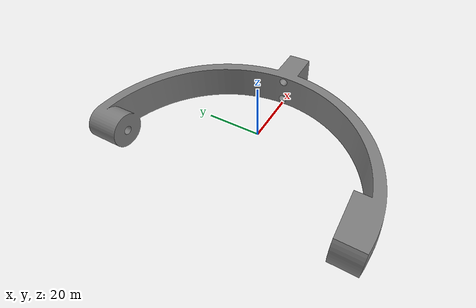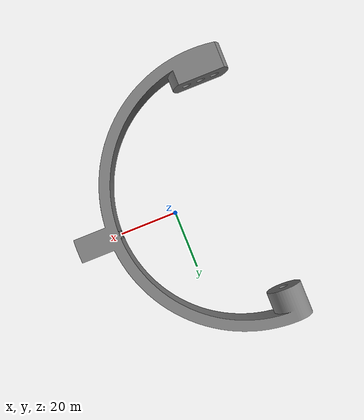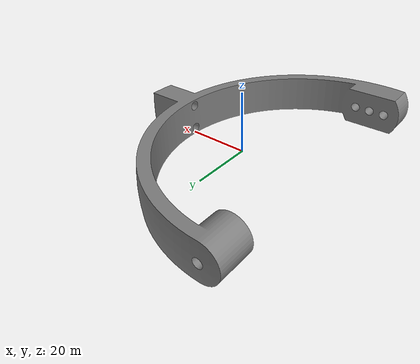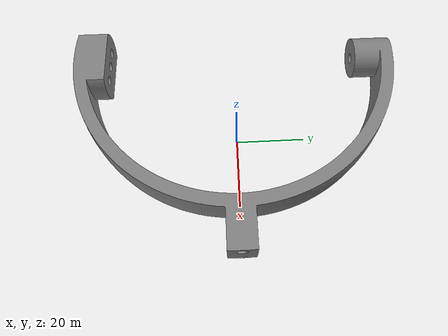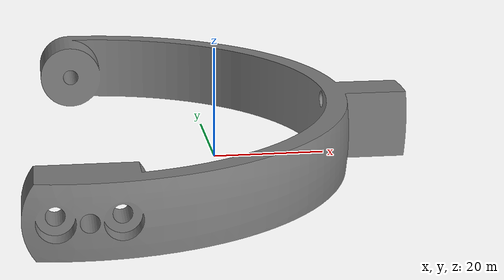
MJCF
<mujoco model="FabConvert.com_back_ring_holder">
  <default>
    <default class="visual">
      <geom group="2" type="mesh" contype="0" conaffinity="0"/>
    </default>
    <default class="collision">
      <geom group="3" type="mesh"/>
    </default>
  </default>
  <asset>
    <mesh file="FabConvert.com_back_ring_holder.obj"/>
  </asset>
  <worldbody>
    <body name="FabConvert.com_back_ring_holder">
      <geom mesh="FabConvert.com_back_ring_holder" class="visual"/>
      <geom mesh="FabConvert.com_back_ring_holder" class="collision"/>
    </body>
  </worldbody>
</mujoco>
